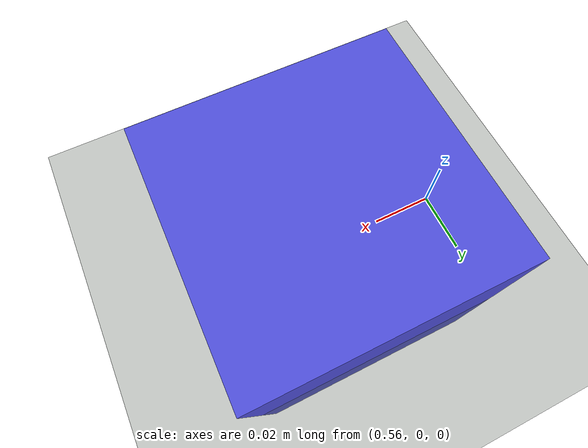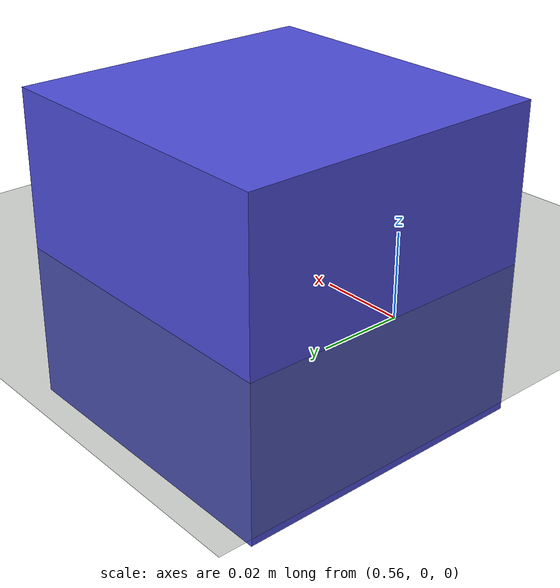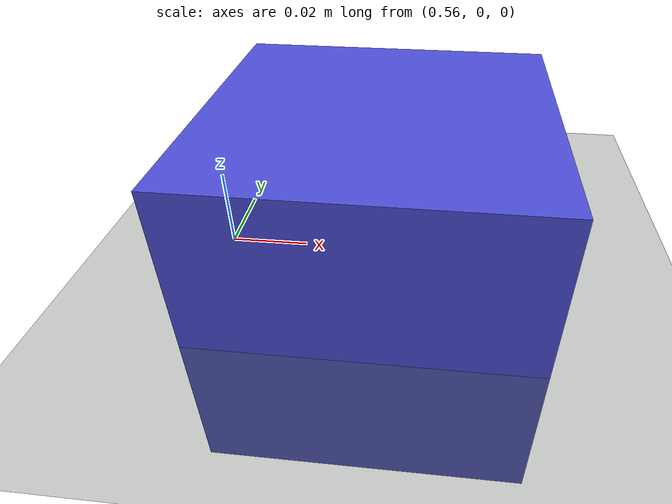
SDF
<?xml version="1.0" ?>
<!-- Headless RGB-D export scene for data/gazebo.py -->
<sdf version="1.8">
  <world name="cube_rgbd">
    <physics name="1ms" type="ignored"/>
    <plugin filename="gz-sim-physics-system" name="gz::sim::systems::Physics"/>
    <plugin filename="gz-sim-user-commands-system" name="gz::sim::systems::UserCommands"/>
    <plugin filename="gz-sim-scene-broadcaster-system" name="gz::sim::systems::SceneBroadcaster"/>
    <plugin filename="gz-sim-sensors-system" name="gz::sim::systems::Sensors">
      <render_engine>ogre2</render_engine>
    </plugin>

    <light type="directional" name="sun">
      <cast_shadows>true</cast_shadows>
      <pose>0 0 10 0 0 0</pose>
      <diffuse>0.9 0.9 0.9 1</diffuse>
      <specular>0.3 0.3 0.3 1</specular>
      <direction>-0.3 0.2 -1</direction>
    </light>

    <model name="ground_plane">
      <static>true</static>
      <link name="link">
        <collision name="collision">
          <geometry>
            <plane>
              <normal>0 0 1</normal>
              <size>20 20</size>
            </plane>
          </geometry>
        </collision>
        <visual name="visual">
          <geometry>
            <plane>
              <normal>0 0 1</normal>
              <size>20 20</size>
            </plane>
          </geometry>
          <material>
            <ambient>0.15 0.18 0.15 1</ambient>
            <diffuse>0.25 0.30 0.25 1</diffuse>
          </material>
        </visual>
      </link>
    </model>

    <!-- Camera at origin; pitched so optical +Z points along world +X -->
    <model name="rgbd_camera">
      <static>true</static>
      <pose>0 0 0 0 0 0</pose>
      <link name="link">
        <pose>0 0 0 0 1.5708 1.5708</pose>
        <sensor name="rgbd_camera" type="rgbd_camera">
          <camera>
            <horizontal_fov>1.084</horizontal_fov>
            <image>
              <width>640</width>
              <height>480</height>
              <format>R8G8B8</format>
            </image>
            <clip>
              <near>0.1</near>
              <far>10</far>
            </clip>
          </camera>
          <always_on>1</always_on>
          <update_rate>15</update_rate>
          <visualize>false</visualize>
          <topic>rgbd</topic>
        </sensor>
      </link>
    </model>

    <!-- 8 cm cube; pose updated each export frame -->
    <model name="colored_cube">
      <pose>0.6 0 0 0 0 0</pose>
      <link name="link">
        <inertial>
          <mass>0.1</mass>
          <inertia>
            <ixx>0.0001</ixx>
            <iyy>0.0001</iyy>
            <izz>0.0001</izz>
          </inertia>
        </inertial>
        <visual name="visual">
          <geometry>
            <box>
              <size>0.08 0.08 0.08</size>
            </box>
          </geometry>
          <material>
            <ambient>0.31 0.31 0.86 1</ambient>
            <diffuse>0.31 0.31 0.86 1</diffuse>
            <specular>0.1 0.1 0.1 1</specular>
          </material>
        </visual>
        <collision name="collision">
          <geometry>
            <box>
              <size>0.08 0.08 0.08</size>
            </box>
          </geometry>
        </collision>
      </link>
    </model>
  </world>
</sdf>
